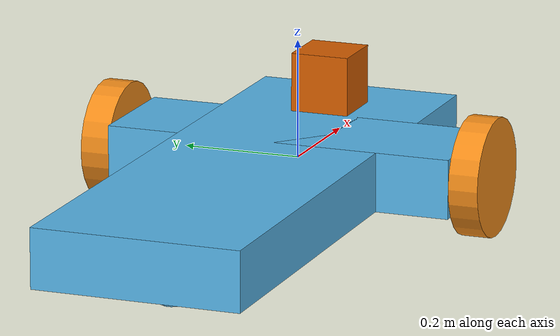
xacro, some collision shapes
<?xml version='1.0'?>

<robot name="project3" xmlns:xacro="http://www.ros.org/wiki/xacro">

<xacro:include filename="$(find project3)/urdf/my_robot.gazebo" />

<link name="robot_footprint"></link>

  <joint name="robot_footprint_joint" type="fixed">
    <origin xyz="0 0 0" rpy="0 0 0" />
    <parent link="robot_footprint" />
    <child link="chassis" />
  </joint>

  <link name="chassis">
    <pose>0 0 0.1 0 0 0</pose>

    <inertial>
      <mass value="15.0" />
      <origin xyz="0 0 0" rpy="0 0 0" />
      <inertia
        ixx="0.1" ixy="0" ixz="0"
        iyy="0.1" iyz="0"
        izz="0.1"
      />
    </inertial>

    <collision name="chassis_collision_1">
      <origin xyz="-.2 0 0" rpy="0 0 0" />
      <geometry>
        <box size="1 .35 .1" />
      </geometry>
    </collision>

    <visual name="chassis_visual_1">
      <origin xyz="-.2 0 0" rpy="0 0 0" />
      <geometry>
        <box size="1 .35 .1" />
      </geometry>
    </visual>

    <collision name="chassis_collision_2">
      <origin xyz="0 0 0" rpy="0 0 0" />
      <geometry>
        <box size=".2 .6 .1" />
      </geometry>
    </collision>

    <visual name="chassis_visual_2">
      <origin xyz="0 0 0" rpy="0 0 0" />
      <geometry>
        <box size=".2 .6 .1" />
      </geometry>
    </visual>

    <collision name="back_caster_collision">
      <origin xyz="-0.55 0 -0.05" rpy="0 0 0" />
      <geometry>
        <sphere radius="0.0499" />
      </geometry>
    </collision>

    <visual name="back_caster_visual">
      <origin xyz="-0.55 0 -0.05" rpy="0 0 0" />
      <geometry>
        <sphere radius="0.0499" />
      </geometry>
    </visual>

    <collision name="front_caster_collision">
      <origin xyz="0.25 0 -0.05" rpy="0 0 0" />
      <geometry>
        <sphere radius="0.0499" />
      </geometry>
    </collision>

    <visual name="front_caster_visual">
      <origin xyz="0.25 0 -0.05" rpy="0 0 0" />
      <geometry>
        <sphere radius="0.0499" />
      </geometry>
    </visual>

</link>
<!-- left_wheel -->

  <link name="left_wheel">
    <inertial>
      <mass value="5.0"/>
      <origin xyz="0 0 0" rpy="0 1.5707 1.5707"/>
      <inertia
          ixx="0.1" ixy="0" ixz="0"
          iyy="0.1" iyz="0"
          izz="0.1"
      />
    </inertial>

    <collision name='left_wheel_collision'>
      <origin xyz="0 0 0" rpy="0 1.5707 1.5707"/>
      <geometry>
        <cylinder radius="0.1" length="0.05"/>
      </geometry>
    </collision>

    <visual name='left_wheel_visual'>
      <origin xyz="0 0 0" rpy=" 0 1.5707 1.5707"/>
      <geometry>
        <cylinder radius="0.1" length="0.05"/>
      </geometry>
    </visual>
  </link>

<!-- right_wheel -->

  <link name="right_wheel">

    <inertial>
      <mass value="5.0"/>
      <origin xyz="0 0 0" rpy="0 1.5707 1.5707"/>
      <inertia
          ixx="0.1" ixy="0" ixz="0"
          iyy="0.1" iyz="0"
          izz="0.1"
      />
    </inertial>

    <collision name='right_wheel_collision'>
      <origin xyz="0 0 0" rpy="0 1.5707 1.5707"/>
      <geometry>
        <cylinder radius="0.1" length="0.05"/>
      </geometry>
    </collision>

    <visual name='right_wheel_visual'>
      <origin xyz="0 0 0" rpy="0 1.5707 1.5707"/>
      <geometry>
        <cylinder radius="0.1" length="0.05"/>
      </geometry>
    </visual>
  </link>

 <joint type="continuous" name="left_wheel_hinge">
    <origin xyz="0 0.325 0" rpy="0 0 0" />
    <child link="left_wheel" />
    <parent link="chassis" />
    <axis xyz="0 1 0" rpy="0 0 0" />
    <limit effort="10000" velocity="1000" />
    <dynamics damping="1.0" friction="1.0" />
</joint>

  <joint type="continuous" name="right_wheel_hinge">
    <origin xyz="0 -0.325 0" rpy="0 0 0"/>
    <child link="right_wheel"/>
    <parent link="chassis"/>
    <axis xyz="0 1 0" rpy="0 0 0"/>
    <limit effort="10000" velocity="1000"/>
    <dynamics damping="1.0" friction="1.0"/>
  </joint>

<!-- camera -->

  <link name="camera">
    <inertial>
      <mass value="0.1"/>
      <origin xyz="0.05 0.05 0.05" rpy=" 0 0 0"/>
      <inertia
          ixx="1e-6" ixy="0" ixz="0"
          iyy="1e-6" iyz="0"
          izz="1e-6"
      />
    </inertial>

    <collision name='collision'>
      <origin xyz="0 0 0" rpy=" 0 0 0"/>
      <geometry>
        <box size=".05 .05 .05" />
      </geometry>
    </collision>

    <visual name='camera_visual'>
      <origin xyz="0 0 0" rpy=" 0 0 0"/>
      <geometry>
        <box size=".05 .05 .05" />
      </geometry>
    </visual>
  </link>

  <joint type="fixed" name="camera_joint">
    <origin xyz="0.2 0 0" rpy="0 0 0"/>
    <child link="camera"/>
    <parent link="chassis"/>
    <axis xyz="0 1 0" rpy="0 0 0"/>
  </joint>

<!-- HUKOYO -->

<link name='hokuyo'>
    <inertial>
      <mass value="1e-5"/>
      <origin xyz="0.0 0 0" rpy=" 0 0 0"/>
      <inertia
          ixx="1e-6" ixy="0" ixz="0"
          iyy="1e-6" iyz="0"
          izz="1e-6"
      />
    </inertial>

    <collision name='collision'>
      <origin xyz="0 0 0" rpy=" 0 0 0"/>
      <geometry>
        <box size="0.1 0.1 0.1"/>
      </geometry>
    </collision>

    <visual name='hukuyo_visual'>
      <origin xyz="0 0 0" rpy=" 0 0 0"/>
      <geometry>
        <mesh filename="$(find project3)/meshes/hokuyo.dae"/>
      </geometry>
    </visual>
  </link>

  <joint type="fixed" name="hokuyo_joint">
    <origin xyz="0.15 0 0.1" rpy="0 0 0"/>
    <child link="hokuyo"/>
    <parent link="chassis"/>
    <axis xyz="0 1 0" rpy="0 0 0"/>
  </joint>

<gazebo reference="left_wheel">
    <material>Gazebo/Orange</material>
</gazebo>

<gazebo reference="right_wheel">
    <material>Gazebo/Orange</material>
</gazebo>

</robot>
